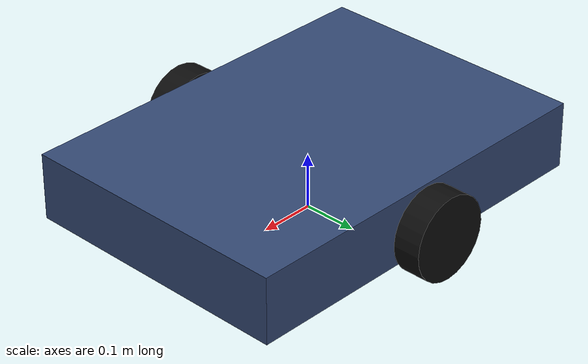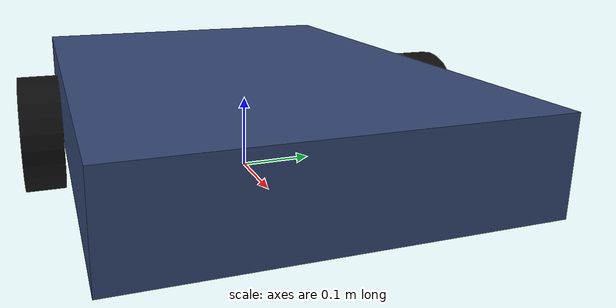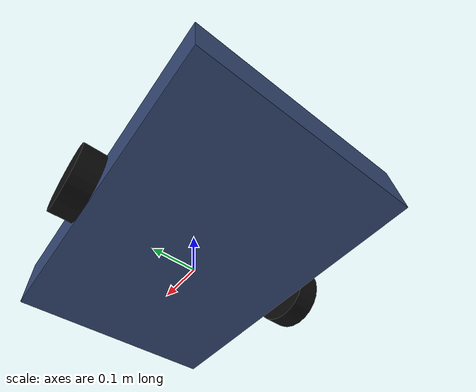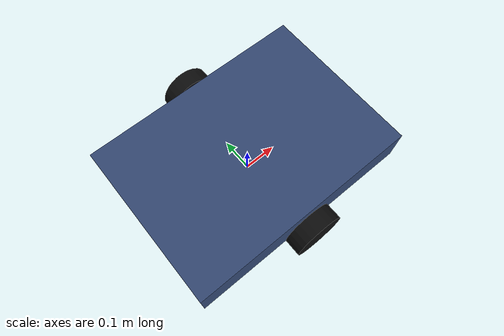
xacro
<?xml version="1.0"?>
<robot xmlns:xacro="http://www.ros.org/wiki/xacro" name="warehouse_robot">

  <xacro:property name="base_x" value="0.70"/>
  <xacro:property name="base_y" value="0.50"/>
  <xacro:property name="base_z" value="0.12"/>
  <xacro:property name="base_mass" value="18.0"/>
  <xacro:property name="base_clearance" value="0.03"/>  <!-- ground to chassis underside -->
  <xacro:property name="wheel_radius" value="0.075"/>
  <xacro:property name="wheel_width" value="0.05"/>
  <xacro:property name="wheel_y" value="0.28"/>
  <xacro:property name="wheel_mass" value="1.5"/>
  <xacro:property name="caster_radius" value="0.04"/>
  <xacro:property name="caster_x" value="0.28"/>
  <xacro:property name="caster_mass" value="0.3"/>

  <material name="body_blue"><color rgba="0.2 0.28 0.45 1"/></material>
  <material name="black"><color rgba="0.05 0.05 0.05 1"/></material>
  <material name="dark_grey"><color rgba="0.25 0.25 0.27 1"/></material>

  <!-- Frame on the ground -->
  <link name="base_footprint"/>

  <joint name="base_footprint_joint" type="fixed">
    <parent link="base_footprint"/>
    <child link="base_link"/>
    <origin xyz="0 0 ${wheel_radius}" rpy="0 0 0"/>
  </joint>

  <!-- The chassis. base_link is at axle height, so the box is offset from it. -->
  <link name="base_link">
    <visual>
      <origin xyz="0 0 ${base_clearance + base_z/2 - wheel_radius}"/>
      <geometry><box size="${base_x} ${base_y} ${base_z}"/></geometry>
      <material name="body_blue"/>
    </visual>
    <collision>
      <origin xyz="0 0 ${base_clearance + base_z/2 - wheel_radius}"/>
      <geometry><box size="${base_x} ${base_y} ${base_z}"/></geometry>
    </collision>
    <inertial>
      <origin xyz="0 0 ${base_clearance + base_z/2 - wheel_radius}"/>
      <mass value="${base_mass}"/>
      <!-- solid box: ixx = m/12 (y² + z²), iyy = m/12 (x² + z²), izz = m/12 (x² + y²) -->
      <inertia ixx="${base_mass/12.0*(base_y*base_y + base_z*base_z)}" ixy="0" ixz="0"
               iyy="${base_mass/12.0*(base_x*base_x + base_z*base_z)}" iyz="0"
               izz="${base_mass/12.0*(base_x*base_x + base_y*base_y)}"/>
    </inertial>
  </link>

  <!-- Drive wheel: one definition, used for left and right -->
  <xacro:macro name="drive_wheel" params="side y">
    <link name="${side}_wheel_link">
      <visual>
        <origin xyz="0 0 0" rpy="${pi/2} 0 0"/>
        <geometry><cylinder radius="${wheel_radius}" length="${wheel_width}"/></geometry>
        <material name="black"/>
      </visual>
      <collision>
        <origin xyz="0 0 0" rpy="${pi/2} 0 0"/>
        <geometry><cylinder radius="${wheel_radius}" length="${wheel_width}"/></geometry>
      </collision>
      <inertial>
        <mass value="${wheel_mass}"/>
        <!-- solid cylinder spinning about Y:
             iyy = m r²/2,  ixx = izz = m/12 (3 r² + h²) -->
        <inertia ixx="${wheel_mass/12.0*(3*wheel_radius*wheel_radius + wheel_width*wheel_width)}"
                 ixy="0" ixz="0"
                 iyy="${wheel_mass*wheel_radius*wheel_radius/2.0}"
                 iyz="0"
                 izz="${wheel_mass/12.0*(3*wheel_radius*wheel_radius + wheel_width*wheel_width)}"/>
      </inertial>
    </link>

    <joint name="${side}_wheel_joint" type="continuous">
      <parent link="base_link"/>
      <child link="${side}_wheel_link"/>
      <origin xyz="0 ${y} 0" rpy="0 0 0"/>
      <axis xyz="0 1 0"/>
      <limit effort="40.0" velocity="20.0"/>
      <dynamics damping="0.01" friction="0.0"/>
    </joint>

    <gazebo reference="${side}_wheel_link">
      <mu1>1.0</mu1>
      <mu2>1.0</mu2>
    </gazebo>
  </xacro:macro>

  <xacro:drive_wheel side="left"  y="${wheel_y}"/>
  <xacro:drive_wheel side="right" y="${-wheel_y}"/>
</robot>
